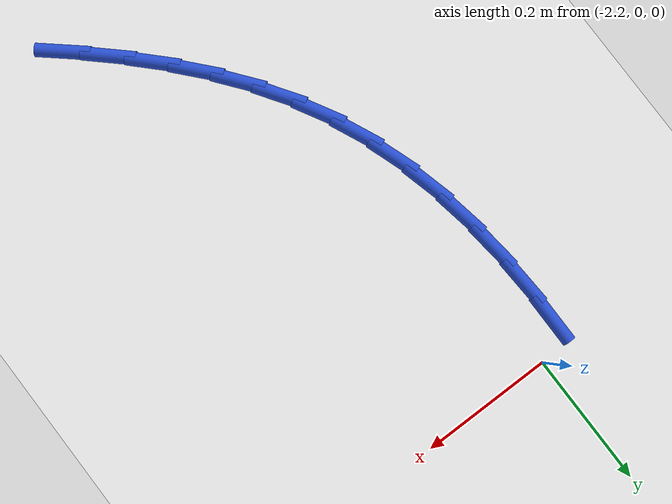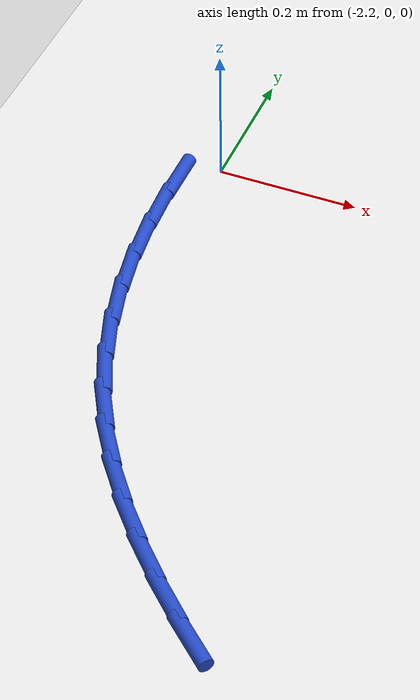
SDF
<sdf version="1.6">
 <world name="default">
  <model name="ground_plane">
   <static>1</static>
   <link name="link">
    <collision name="collision">
     <geometry><plane><normal>0 0 1</normal><size>100 100</size></plane></geometry>
     <surface><friction><ode><mu>100</mu><mu2>50</mu2></ode></friction></surface>
    </collision>
    <visual name="visual">
     <cast_shadows>0</cast_shadows>
     <geometry><plane><normal>0 0 1</normal><size>100 100</size></plane></geometry>
     <material>
      <script><uri>file://media/materials/scripts/gazebo.material</uri><name>Gazebo/WhiteGlow</name></script>
     </material>
    </visual>
   </link>
  </model>
  <model name="line">
   <link name="link_56">
    <pose>-2.2467930788110437 -0.04179541224594083 0.01 0 1.57 1.5683000761213186</pose>
    <collision name="collision">
     <geometry><cylinder><radius>0.01</radius><length>0.08</length></cylinder></geometry>
    </collision>
    <visual name="visual">
     <material>
      <script><name>Gazebo/Blue</name><uri>file://media/materials/scripts/gazebo.material</uri></script>
     </material>
     <geometry><cylinder><radius>0.01</radius><length>0.08</length></cylinder></geometry>
    </visual>
   </link>
   <link name="link_57">
    <pose>-2.2469577094375013 -0.10774643481249399 0.01 0 1.57 -1.5173424831435738</pose>
    <collision name="collision">
     <geometry><cylinder><radius>0.01</radius><length>0.08</length></cylinder></geometry>
    </collision>
    <visual name="visual">
     <material>
      <script><name>Gazebo/Blue</name><uri>file://media/materials/scripts/gazebo.material</uri></script>
     </material>
     <geometry><cylinder><radius>0.01</radius><length>0.08</length></cylinder></geometry>
    </visual>
   </link>
   <link name="link_58">
    <pose>-2.2434777871467695 -0.17278585971057786 0.01 0 1.57 -1.4561963709944687</pose>
    <collision name="collision">
     <geometry><cylinder><radius>0.01</radius><length>0.08</length></cylinder></geometry>
    </collision>
    <visual name="visual">
     <material>
      <script><name>Gazebo/Blue</name><uri>file://media/materials/scripts/gazebo.material</uri></script>
     </material>
     <geometry><cylinder><radius>0.01</radius><length>0.08</length></cylinder></geometry>
    </visual>
   </link>
   <link name="link_59">
    <pose>-2.2361299765464335 -0.23662197306749966 0.01 0 1.57 -1.38932392802929</pose>
    <collision name="collision">
     <geometry><cylinder><radius>0.01</radius><length>0.08</length></cylinder></geometry>
    </collision>
    <visual name="visual">
     <material>
      <script><name>Gazebo/Blue</name><uri>file://media/materials/scripts/gazebo.material</uri></script>
     </material>
     <geometry><cylinder><radius>0.01</radius><length>0.08</length></cylinder></geometry>
    </visual>
   </link>
   <link name="link_60">
    <pose>-2.224690942244078 -0.29896306101056336 0.01 0 1.57 -1.3162819000340888</pose>
    <collision name="collision">
     <geometry><cylinder><radius>0.01</radius><length>0.08</length></cylinder></geometry>
    </collision>
    <visual name="visual">
     <material>
      <script><name>Gazebo/Blue</name><uri>file://media/materials/scripts/gazebo.material</uri></script>
     </material>
     <geometry><cylinder><radius>0.01</radius><length>0.08</length></cylinder></geometry>
    </visual>
   </link>
   <link name="link_61">
    <pose>-2.2089373488472863 -0.35951740966707607 0.01 0 1.57 -1.236791234268189</pose>
    <collision name="collision">
     <geometry><cylinder><radius>0.01</radius><length>0.08</length></cylinder></geometry>
    </collision>
    <visual name="visual">
     <material>
      <script><name>Gazebo/Blue</name><uri>file://media/materials/scripts/gazebo.material</uri></script>
     </material>
     <geometry><cylinder><radius>0.01</radius><length>0.08</length></cylinder></geometry>
    </visual>
   </link>
   <link name="link_62">
    <pose>-2.1886458609636446 -0.41799330516434197 0.01 0 1.57 -1.1508343729032104</pose>
    <collision name="collision">
     <geometry><cylinder><radius>0.01</radius><length>0.08</length></cylinder></geometry>
    </collision>
    <visual name="visual">
     <material>
      <script><name>Gazebo/Blue</name><uri>file://media/materials/scripts/gazebo.material</uri></script>
     </material>
     <geometry><cylinder><radius>0.01</radius><length>0.08</length></cylinder></geometry>
    </visual>
   </link>
   <link name="link_63">
    <pose>-2.163593143200735 -0.4740990336296682 0.01 0 1.57 -1.061005464114999</pose>
    <collision name="collision">
     <geometry><cylinder><radius>0.01</radius><length>0.08</length></cylinder></geometry>
    </collision>
    <visual name="visual">
     <material>
      <script><name>Gazebo/Blue</name><uri>file://media/materials/scripts/gazebo.material</uri></script>
     </material>
     <geometry><cylinder><radius>0.01</radius><length>0.08</length></cylinder></geometry>
    </visual>
   </link>
   <link name="link_64">
    <pose>-2.133664111002267 -0.5276312807071484 0.01 0 1.57 -0.9777163790005386</pose>
    <collision name="collision">
     <geometry><cylinder><radius>0.01</radius><length>0.08</length></cylinder></geometry>
    </collision>
    <visual name="visual">
     <material>
      <script><name>Gazebo/Blue</name><uri>file://media/materials/scripts/gazebo.material</uri></script>
     </material>
     <geometry><cylinder><radius>0.01</radius><length>0.08</length></cylinder></geometry>
    </visual>
   </link>
   <link name="link_65">
    <pose>-2.099201593255806 -0.5787606721287152 0.01 0 1.57 -0.9043825325219622</pose>
    <collision name="collision">
     <geometry><cylinder><radius>0.01</radius><length>0.08</length></cylinder></geometry>
    </collision>
    <visual name="visual">
     <material>
      <script><name>Gazebo/Blue</name><uri>file://media/materials/scripts/gazebo.material</uri></script>
     </material>
     <geometry><cylinder><radius>0.01</radius><length>0.08</length></cylinder></geometry>
    </visual>
   </link>
   <link name="link_66">
    <pose>-2.060669478862152 -0.6277566933400518 0.01 0 1.57 -0.8412861105328951</pose>
    <collision name="collision">
     <geometry><cylinder><radius>0.01</radius><length>0.08</length></cylinder></geometry>
    </collision>
    <visual name="visual">
     <material>
      <script><name>Gazebo/Blue</name><uri>file://media/materials/scripts/gazebo.material</uri></script>
     </material>
     <geometry><cylinder><radius>0.01</radius><length>0.08</length></cylinder></geometry>
    </visual>
   </link>
   <link name="link_67">
    <pose>-2.0185316574640386 -0.6748888303927159 0.01 0 1.57 -0.7882401248960543</pose>
    <collision name="collision">
     <geometry><cylinder><radius>0.01</radius><length>0.08</length></cylinder></geometry>
    </collision>
    <visual name="visual">
     <material>
      <script><name>Gazebo/Blue</name><uri>file://media/materials/scripts/gazebo.material</uri></script>
     </material>
     <geometry><cylinder><radius>0.01</radius><length>0.08</length></cylinder></geometry>
    </visual>
   </link>
   <link name="link_68">
    <pose>-1.9732520187041998 -0.720426569338268 0.01 0 1.57 -0.7447920528373178</pose>
    <collision name="collision">
     <geometry><cylinder><radius>0.01</radius><length>0.08</length></cylinder></geometry>
    </collision>
    <visual name="visual">
     <material>
      <script><name>Gazebo/Blue</name><uri>file://media/materials/scripts/gazebo.material</uri></script>
     </material>
     <geometry><cylinder><radius>0.01</radius><length>0.08</length></cylinder></geometry>
    </visual>
   </link>
   <link name="link_69">
    <pose>-1.9252944522253703 -0.7646393962282658 0.01 0 1.57 -0.7103835210573227</pose>
    <collision name="collision">
     <geometry><cylinder><radius>0.01</radius><length>0.08</length></cylinder></geometry>
    </collision>
    <visual name="visual">
     <material>
      <script><name>Gazebo/Blue</name><uri>file://media/materials/scripts/gazebo.material</uri></script>
     </material>
     <geometry><cylinder><radius>0.01</radius><length>0.08</length></cylinder></geometry>
    </visual>
   </link>
  </model>
 </world>
</sdf>
